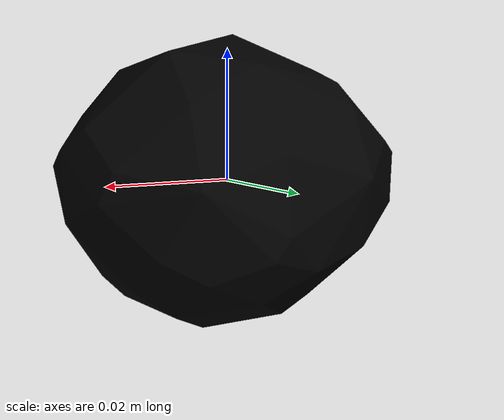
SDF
<?xml version="1.0"?>
<sdf version="1.4">
  <model name="012_strawberry_textured">
    <pose>0 0 0  0 0 0</pose>
    <link name="body">
      <inertial>
        <mass> 1.0 </mass>
        <pose>0 0 0 0 0 0</pose>
        <inertia>
          <ixx>0.00018804156668440243</ixx>
          <ixy>0.0</ixy>
          <ixz>0.0</ixz>
          <iyy>0.0002091355122880768</iyy>
          <iyz>0.0</iyz>
          <izz>0.0002305901119575207</izz>
        </inertia>
      </inertial>
      <visual name="visual">
        <geometry>
          <mesh>
            <uri>model://012_strawberry_textured/textured.dae</uri>
          </mesh>
        </geometry>
        <pose>-0.013838084537962342 -0.020650401436782165 0.008263758626028012 -1.3118401642923743 -0.6946114245546988 -0.3903125541481072</pose>
      </visual>
      <collision name="collision">
        <geometry>
          <mesh>
            <uri>model://012_strawberry_textured/textured.col.dae</uri>
          </mesh>
        </geometry>
        <max_contacts>10</max_contacts>
        <surface>
          <friction>
            <ode>
              <mu>0.8</mu>
              <mu2>0.8</mu2>
              <slip1>0</slip1>
              <slip2>0</slip2>
            </ode>
            <torsional>
              <ode/>
            </torsional>
          </friction>
          <contact>
            <ode>
              <kp>1000000.0</kp>
              <kd>1.0</kd>
              <max_vel>0.0</max_vel>
            </ode>
          </contact>
        </surface>
        <pose>-0.013838084537962342 -0.020650401436782165 0.008263758626028012 -1.3118401642923743 -0.6946114245546988 -0.3903125541481072</pose>
      </collision>
    </link>
  </model>
</sdf>
